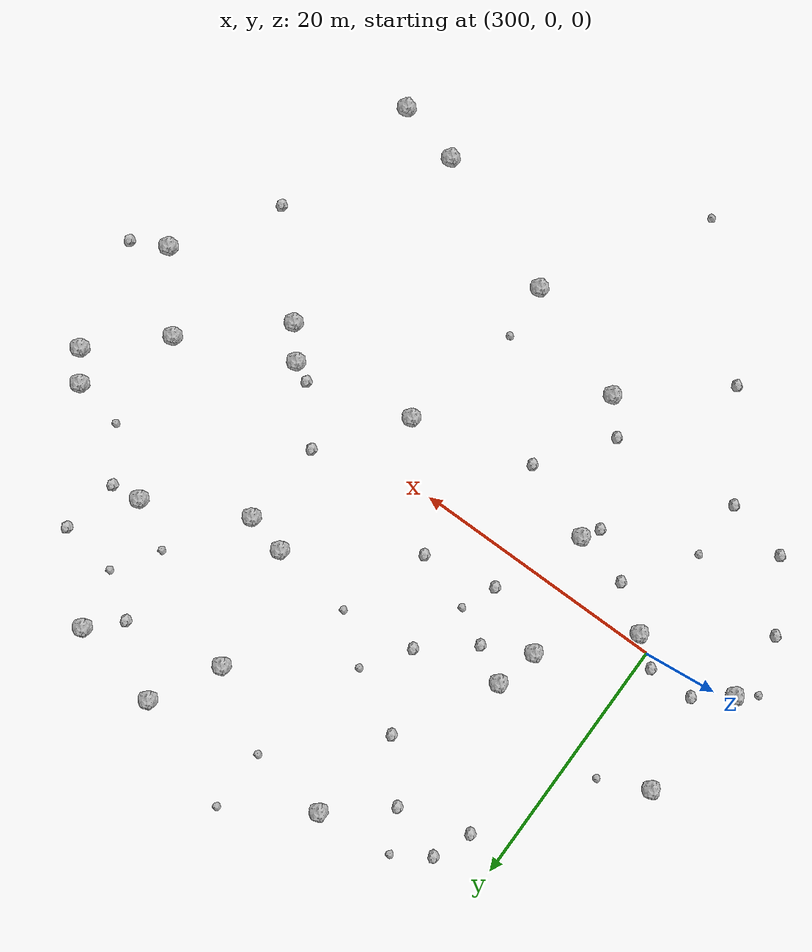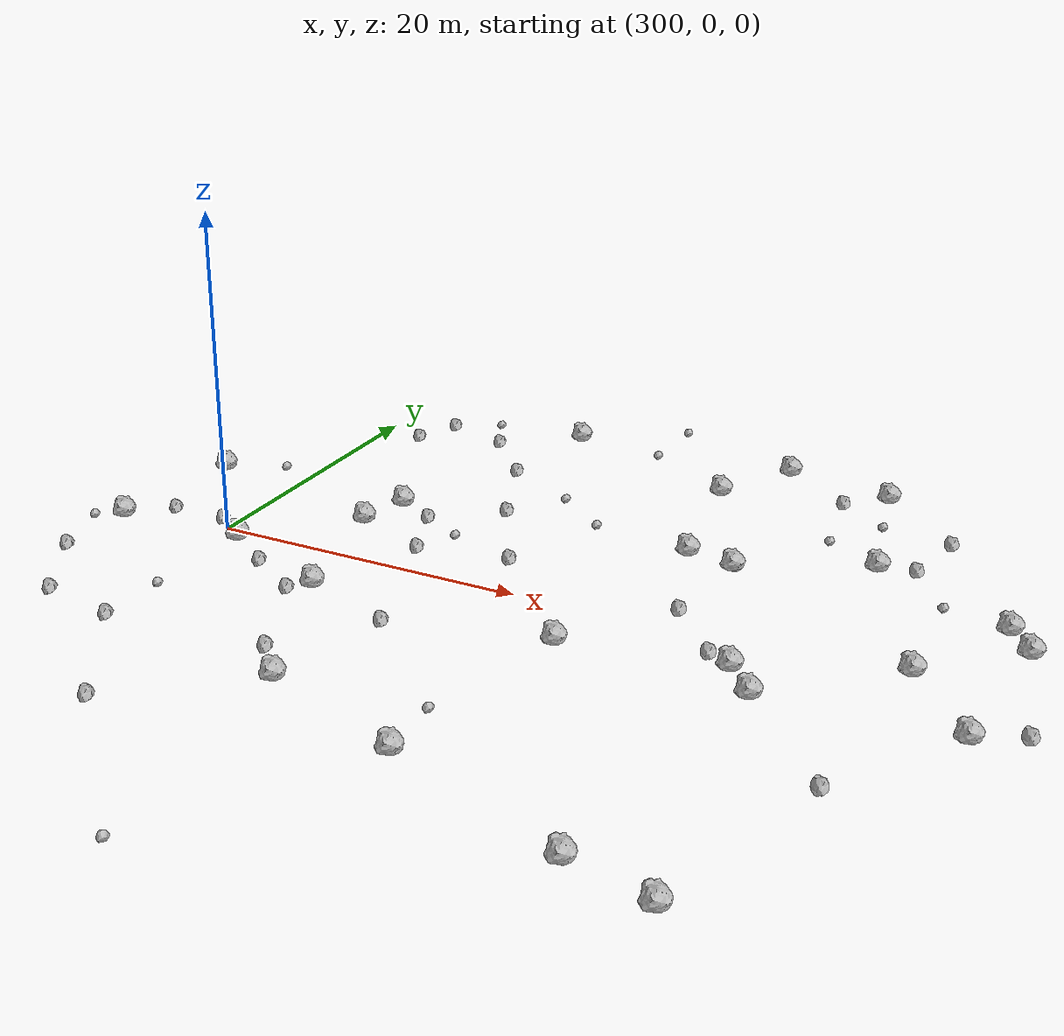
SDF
<sdf version="1.6">
 <world name="default">
  <include><uri>model://sun</uri></include>
  <model name="rock1_8_3">
   <include><uri>model://rock1</uri><pose>292.9569075051376 -1.3377726140525752 0.5 0 0 0</pose></include>
  </model>
  <model name="rock1_8_4">
   <include><uri>model://rock1</uri><pose>322.51795891390975 -17.57068593905555 0.5 0 0 0</pose></include>
  </model>
  <model name="rock1_8_5">
   <include><uri>model://rock1</uri><pose>346.92350967625123 -3.8197475187297947 0.5 0 0 0</pose></include>
  </model>
  <model name="rock1_8_6">
   <include><uri>model://rock1</uri><pose>326.78569447307564 9.714214759729337 0.5 0 0 0</pose></include>
  </model>
  <model name="rock1_8_7">
   <include><uri>model://rock1</uri><pose>328.2152503802888 24.484024714453184 0.5 0 0 0</pose></include>
  </model>
  <model name="rock1_8_8">
   <include><uri>model://rock1</uri><pose>313.0465887310343 23.777545170251905 0.5 0 0 0</pose></include>
  </model>
  <model name="rock1_8_9">
   <include><uri>model://rock1</uri><pose>335.34174771837866 22.996844633009424 0.5 0 0 0</pose></include>
  </model>
  <model name="rock1_8_10">
   <include><uri>model://rock1</uri><pose>334.0764799883345 -2.401210570214154 0.5 0 0 0</pose></include>
  </model>
  <model name="rock1_8_11">
   <include><uri>model://rock1</uri><pose>306.9448601142516 4.840927881847669 0.5 0 0 0</pose></include>
  </model>
  <model name="rock1_8_12">
   <include><uri>model://rock1</uri><pose>324.612360410323 -4.055677170813603 0.5 0 0 0</pose></include>
  </model>
  <model name="rock1_8_13">
   <include><uri>model://rock1</uri><pose>337.55166020041725 12.781136467849542 0.5 0 0 0</pose></include>
  </model>
  <model name="rock1_8_14">
   <include><uri>model://rock1</uri><pose>313.3881744134476 -14.235587788968097 0.5 0 0 0</pose></include>
  </model>
  <model name="rock1_8_15">
   <include><uri>model://rock1</uri><pose>293.99097961388543 7.969734854660132 0.5 0 0 0</pose></include>
  </model>
  <model name="rock1_8_16">
   <include><uri>model://rock1</uri><pose>329.9387808276963 8.959959475739922 0.5 0 0 0</pose></include>
  </model>
  <model name="rock1_8_17">
   <include><uri>model://rock1</uri><pose>309.1229129011866 -4.249802754564019 0.5 0 0 0</pose></include>
  </model>
  <model name="rock1_8_18">
   <include><uri>model://rock1</uri><pose>325.2506428031825 19.229419751352133 0.5 0 0 0</pose></include>
  </model>
  <model name="rock1_8_19">
   <include><uri>model://rock1</uri><pose>301.40656809026217 -0.9244989544760998 0.5 0 0 0</pose></include>
  </model>
  <model name="rock1_8_20">
   <include><uri>model://rock1</uri><pose>335.9464678586815 -4.6710211055816195 0.5 0 0 0</pose></include>
  </model>
  <model name="rock1_8_21">
   <include><uri>model://rock1</uri><pose>346.2527506238281 8.395801270478607 0.5 0 0 0</pose></include>
  </model>
  <model name="rock1_8_22">
   <include><uri>model://rock1</uri><pose>338.5591649369019 -22.76882016521197 0.5 0 0 0</pose></include>
  </model>
  <model name="rock1_8_23">
   <include><uri>model://rock1</uri><pose>347.81498547545465 6.232701164029578 0.5 0 0 0</pose></include>
  </model>
  <model name="rock1_8_24">
   <include><uri>model://rock1</uri><pose>342.70632882886804 1.456215346314167 0.5 0 0 0</pose></include>
  </model>
  <model name="rock1_8_25">
   <include><uri>model://rock1</uri><pose>333.6441757013114 -21.617462014451206 0.5 0 0 0</pose></include>
  </model>
  <model name="rock1_8_26">
   <include><uri>model://rock1</uri><pose>307.7679864162828 8.200276262890831 0.5 0 0 0</pose></include>
  </model>
  <model name="rock2_8_0">
   <include><uri>model://rock2</uri><pose>299.1166363431258 0.715993691091672 0.3 0 0 0</pose></include>
  </model>
  <model name="rock2_8_1">
   <include><uri>model://rock2</uri><pose>341.87426007159877 -11.313698928926694 0.3 0 0 0</pose></include>
  </model>
  <model name="rock2_8_2">
   <include><uri>model://rock2</uri><pose>317.8009036233267 3.7183737595326107 0.3 0 0 0</pose></include>
  </model>
  <model name="rock2_8_3">
   <include><uri>model://rock2</uri><pose>308.2244947084616 -5.523713812771071 0.3 0 0 0</pose></include>
  </model>
  <model name="rock2_8_4">
   <include><uri>model://rock2</uri><pose>314.3891213128342 9.891176791973862 0.3 0 0 0</pose></include>
  </model>
  <model name="rock2_8_5">
   <include><uri>model://rock2</uri><pose>332.57323341129904 -1.6314161874628468 0.3 0 0 0</pose></include>
  </model>
  <model name="rock2_8_6">
   <include><uri>model://rock2</uri><pose>301.15670048396845 -12.844747867609964 0.3 0 0 0</pose></include>
  </model>
  <model name="rock2_8_7">
   <include><uri>model://rock2</uri><pose>311.94082283166034 16.02027340429523 0.3 0 0 0</pose></include>
  </model>
  <model name="rock2_8_8">
   <include><uri>model://rock2</uri><pose>304.13317390726706 21.521907415286137 0.3 0 0 0</pose></include>
  </model>
  <model name="rock2_8_9">
   <include><uri>model://rock2</uri><pose>330.10619527339014 9.119878349677336 0.3 0 0 0</pose></include>
  </model>
  <model name="rock2_8_10">
   <include><uri>model://rock2</uri><pose>332.99677912173644 20.75061385340978 0.3 0 0 0</pose></include>
  </model>
  <model name="rock2_8_11">
   <include><uri>model://rock2</uri><pose>302.8854538237771 18.54701122337628 0.3 0 0 0</pose></include>
  </model>
  <model name="rock2_8_12">
   <include><uri>model://rock2</uri><pose>304.68234563339155 -3.237380266087875 0.3 0 0 0</pose></include>
  </model>
  <model name="rock2_8_13">
   <include><uri>model://rock2</uri><pose>340.6994089369013 17.69791730426003 0.3 0 0 0</pose></include>
  </model>
  <model name="rock2_8_14">
   <include><uri>model://rock2</uri><pose>315.17604375561206 -6.501885902864437 0.3 0 0 0</pose></include>
  </model>
  <model name="rock2_8_15">
   <include><uri>model://rock2</uri><pose>312.0934480140626 2.590668423112348 0.3 0 0 0</pose></include>
  </model>
  <model name="rock2_8_16">
   <include><uri>model://rock2</uri><pose>335.99513605251764 -4.451345628734174 0.3 0 0 0</pose></include>
  </model>
  <model name="rock2_8_17">
   <include><uri>model://rock2</uri><pose>339.7954207666271 13.137042817773775 0.3 0 0 0</pose></include>
  </model>
  <model name="rock2_8_18">
   <include><uri>model://rock2</uri><pose>311.22266909804273 -11.842865012141324 0.3 0 0 0</pose></include>
  </model>
  <model name="rock2_8_19">
   <include><uri>model://rock2</uri><pose>349.5873113105548 -2.4716539512026685 0.3 0 0 0</pose></include>
  </model>
  <model name="rock2_8_20">
   <include><uri>model://rock2</uri><pose>306.18698944574857 -20.27012308436938 0.3 0 0 0</pose></include>
  </model>
  <model name="rock2_8_21">
   <include><uri>model://rock2</uri><pose>310.4621176660232 6.734030171075553 0.3 0 0 0</pose></include>
  </model>
  <model name="rock2_8_22">
   <include><uri>model://rock2</uri><pose>292.986415400784 -6.713614101886389 0.3 0 0 0</pose></include>
  </model>
  <model name="rock2_8_23">
   <include><uri>model://rock2</uri><pose>295.45802938609376 0.6978458404176244 0.3 0 0 0</pose></include>
  </model>
  <model name="rock2_8_24">
   <include><uri>model://rock2</uri><pose>329.2803669228578 2.2617256456230947 0.3 0 0 0</pose></include>
  </model>
  <model name="rock2_8_25">
   <include><uri>model://rock2</uri><pose>308.4583886167945 20.11198604457112 0.3 0 0 0</pose></include>
  </model>
  <model name="rock2_8_26">
   <include><uri>model://rock2</uri><pose>296.17856914132045 -11.798354372092735 0.3 0 0 0</pose></include>
  </model>
  <model name="rock3_8_0">
   <include><uri>model://rock3</uri><pose>319.3788876398207 27.953200903596347 0.2 0 0 0</pose></include>
  </model>
  <model name="rock3_8_1">
   <include><uri>model://rock3</uri><pose>315.0386542840926 -29.511211103089718 0.2 0 0 0</pose></include>
  </model>
  <model name="rock3_8_2">
   <include><uri>model://rock3</uri><pose>313.190914042923 5.248396211118298 0.2 0 0 0</pose></include>
  </model>
  <model name="rock3_8_3">
   <include><uri>model://rock3</uri><pose>336.21621282290056 18.388482776437364 0.2 0 0 0</pose></include>
  </model>
  <model name="rock3_8_4">
   <include><uri>model://rock3</uri><pose>333.91312297915675 14.922221668516073 0.2 0 0 0</pose></include>
  </model>
  <model name="rock3_8_5">
   <include><uri>model://rock3</uri><pose>322.1756758321044 -13.40316844435317 0.2 0 0 0</pose></include>
  </model>
  <model name="rock3_8_6">
   <include><uri>model://rock3</uri><pose>301.12567942479427 -8.359333603649944 0.2 0 0 0</pose></include>
  </model>
  <model name="rock3_8_7">
   <include><uri>model://rock3</uri><pose>319.15147724326033 23.031095045483 0.2 0 0 0</pose></include>
  </model>
  <model name="rock3_8_8">
   <include><uri>model://rock3</uri><pose>342.31189110964635 9.246596400313493 0.2 0 0 0</pose></include>
  </model>
  <model name="rock3_8_9">
   <include><uri>model://rock3</uri><pose>291.39020268517686 -2.3929115821975024 0.2 0 0 0</pose></include>
  </model>
  <model name="rock3_8_10">
   <include><uri>model://rock3</uri><pose>320.27801676075967 10.581024338269536 0.2 0 0 0</pose></include>
  </model>
  <model name="rock3_8_11">
   <include><uri>model://rock3</uri><pose>297.62849897584863 9.698825748153496 0.2 0 0 0</pose></include>
  </model>
  <model name="rock3_8_12">
   <include><uri>model://rock3</uri><pose>316.7871044450885 13.39367510023284 0.2 0 0 0</pose></include>
  </model>
  <model name="rock3_8_13">
   <include><uri>model://rock3</uri><pose>306.8528489342385 23.286008272604626 0.2 0 0 0</pose></include>
  </model>
 </world>
</sdf>
